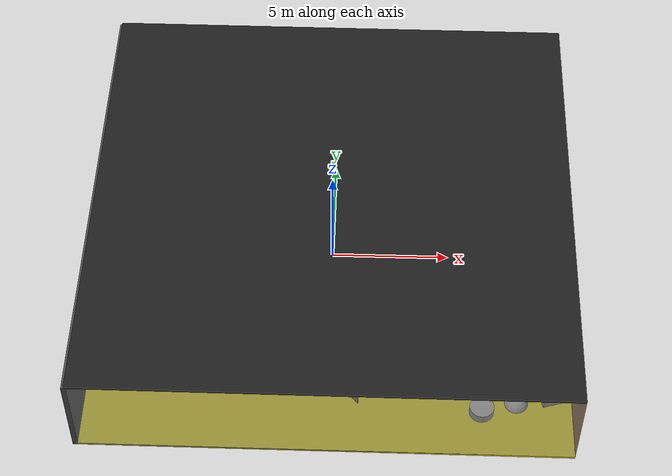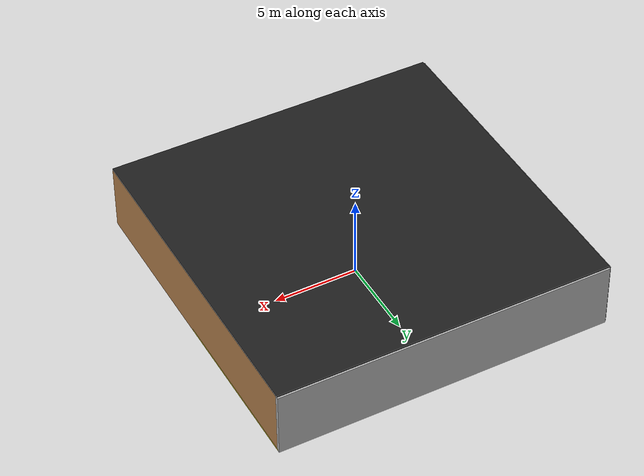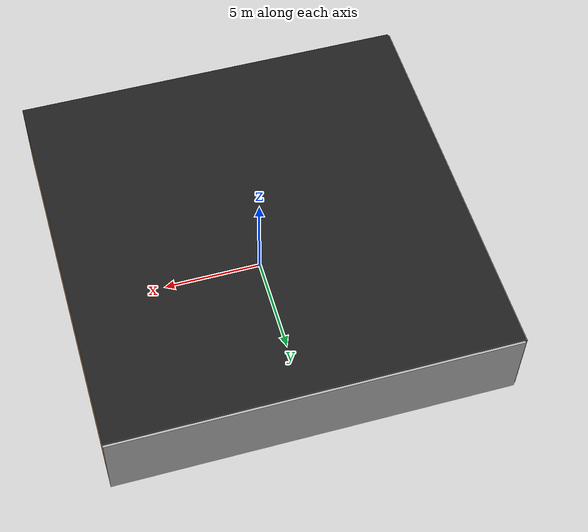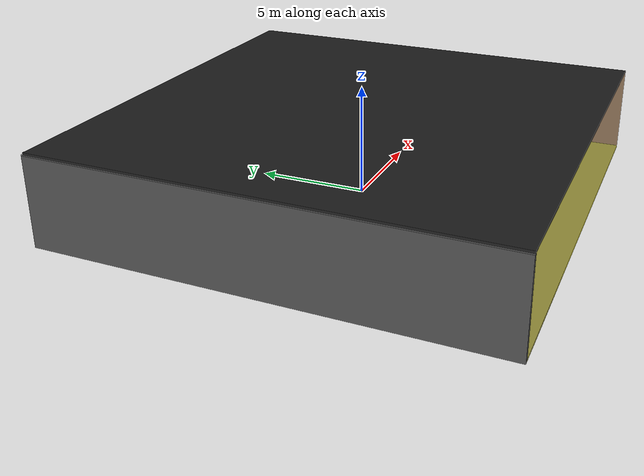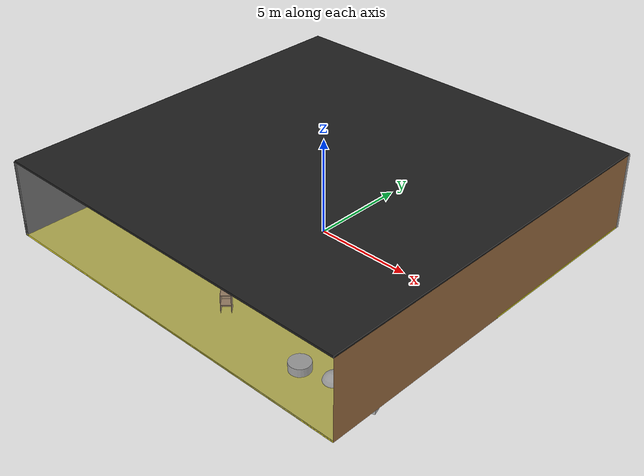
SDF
<sdf version="1.4">
 <world name="default">
  <physics type="ode">
   <max_step_size>0.001</max_step_size>
   <real_time_factor>1</real_time_factor>
   <real_time_update_rate>1000</real_time_update_rate>
   <gravity>0 0 -9.8</gravity>
  </physics>
  <scene><ambient>0.4 0.4 0.4 1</ambient><background>0.7 0.7 0.7 1</background><shadows>1</shadows></scene>
  <model name="Surrounding">
   <static>1</static>
   <link name="Ceiling">
    <collision name="Ceiling_Collision"><geometry><box><size>20 20 0.1</size></box></geometry></collision>
    <visual name="Ceiling_Visual">
     <geometry><box><size>20 20 0.1</size></box></geometry>
     <material>
      <script><uri>file://media/materials/scripts/gazebo.material</uri><name>Gazebo/Black</name></script>
     </material>
    </visual>
    <pose>0 0 4.05 0 0 0</pose>
   </link>
   <link name="Wall_South">
    <collision name="Wall_South_Collision">
     <geometry><box><size>20 0 4</size></box></geometry>
     <pose>0 0 2 0 -0 0</pose>
    </collision>
    <visual name="Wall_South_Visual">
     <pose>0 0 2 0 -0 0</pose>
     <geometry><box><size>20 0 4</size></box></geometry>
     <material>
      <script><uri>file://media/materials/scripts/gazebo.material</uri><name>Gazebo/GreyTransparent</name></script>
     </material>
    </visual>
    <velocity_decay><linear>0</linear><angular>0</angular></velocity_decay>
    <pose>0 -10 0 0 -0 0</pose>
   </link>
   <link name="Wall_East">
    <collision name="Wall_21_Collision">
     <geometry><box><size>20 0 4</size></box></geometry>
     <pose>0 0 2 0 -0 0</pose>
    </collision>
    <visual name="Wall_21_Visual">
     <pose>0 0 2 0 -0 0</pose>
     <geometry><box><size>20 0 4</size></box></geometry>
     <material>
      <script><uri>file://media/materials/scripts/gazebo.material</uri><name>Gazebo/WoodPallet</name></script>
     </material>
    </visual>
    <velocity_decay><linear>0</linear><angular>0</angular></velocity_decay>
    <pose>10 0 0 0 -0 1.5708</pose>
   </link>
   <link name="Wall_North">
    <collision name="Wall_22_Collision">
     <geometry><box><size>20 0.2 4</size></box></geometry>
     <pose>0 0 2 0 -0 0</pose>
    </collision>
    <visual name="Wall_22_Visual">
     <pose>0 0 2 0 -0 0</pose>
     <geometry><box><size>20 0.2 4</size></box></geometry>
     <material>
      <script><uri>file://media/materials/scripts/gazebo.material</uri><name>Gazebo/Pioneer2Body</name></script>
     </material>
    </visual>
    <velocity_decay><linear>0</linear><angular>0</angular></velocity_decay>
    <pose>0 10 0 0 -0 0</pose>
   </link>
   <link name="Wall_West">
    <collision name="Wall_23_Collision">
     <geometry><box><size>20 0.2 4</size></box></geometry>
     <pose>0 0 2 0 -0 0</pose>
    </collision>
    <visual name="Wall_23_Visual">
     <pose>0 0 2 0 -0 0</pose>
     <geometry><box><size>20 0.2 4</size></box></geometry>
     <material>
      <script><uri>file://media/materials/scripts/gazebo.material</uri><name>Gazebo/Road</name></script>
     </material>
    </visual>
    <velocity_decay><linear>0</linear><angular>0</angular></velocity_decay>
    <pose>-10 0 0 0 0 -1.5708</pose>
   </link>
   <link name="Ground_link">
    <collision name="collision">
     <pose>0 0 .05 0 -0 0</pose>
     <geometry><box><size>20 20 0.1</size></box></geometry>
    </collision>
    <visual name="visual">
     <pose>0 0 .05 0 -0 0</pose>
     <geometry><box><size>20 20 0.1</size></box></geometry>
     <material>
      <script><uri>file://media/materials/scripts/gazebo.material</uri><name>Gazebo/YellowGlow</name></script>
     </material>
    </visual>
   </link>
   <static>1</static>
  </model>
  <spherical_coordinates>
   <surface_model>EARTH_WGS84</surface_model>
   <latitude_deg>0</latitude_deg>
   <longitude_deg>0</longitude_deg>
   <elevation>0</elevation>
   <heading_deg>0</heading_deg>
  </spherical_coordinates>
  <light name="lightball_0" type="diffuse">
   <diffuse>0.8 0.8 0.8 1</diffuse>
   <specular>0.2 0.2 0.2 1</specular>
   <attenuation>
    <range>100</range>
    <constant>0.7</constant>
    <linear>0.01</linear>
    <quadratic>0.001</quadratic>
   </attenuation>
   <direction>-0.5 0.1 -0.9</direction>
   <pose>6.13173337723 5.97000826999 0.751445818662 0 0 0</pose>
  </light>
  <light name="lightball_1" type="diffuse">
   <diffuse>0.8 0.8 0.8 1</diffuse>
   <specular>0.2 0.2 0.2 1</specular>
   <attenuation>
    <range>100</range>
    <constant>0.7</constant>
    <linear>0.01</linear>
    <quadratic>0.001</quadratic>
   </attenuation>
   <direction>-0.5 0.1 -0.9</direction>
   <pose>3.0374007321 -2.81225207593 3.5853978411 0 0 0</pose>
  </light>
  <light name="lightball_2" type="diffuse">
   <diffuse>0.8 0.8 0.8 1</diffuse>
   <specular>0.2 0.2 0.2 1</specular>
   <attenuation>
    <range>100</range>
    <constant>0.7</constant>
    <linear>0.01</linear>
    <quadratic>0.001</quadratic>
   </attenuation>
   <direction>-0.5 0.1 -0.9</direction>
   <pose>-3.93516303139 -6.45648261408 0.762824338633 0 0 0</pose>
  </light>
  <light name="lightball_3" type="diffuse">
   <diffuse>0.8 0.8 0.8 1</diffuse>
   <specular>0.2 0.2 0.2 1</specular>
   <attenuation>
    <range>100</range>
    <constant>0.7</constant>
    <linear>0.01</linear>
    <quadratic>0.001</quadratic>
   </attenuation>
   <direction>-0.5 0.1 -0.9</direction>
   <pose>-2.47071479852 -1.63195955633 1.12557566247 0 0 0</pose>
  </light>
  <light name="lightball_4" type="diffuse">
   <diffuse>0.8 0.8 0.8 1</diffuse>
   <specular>0.2 0.2 0.2 1</specular>
   <attenuation>
    <range>100</range>
    <constant>0.7</constant>
    <linear>0.01</linear>
    <quadratic>0.001</quadratic>
   </attenuation>
   <direction>-0.5 0.1 -0.9</direction>
   <pose>-1.14334491536 -2.47345393525 1.8271640996 0 0 0</pose>
  </light>
  <include>
   <uri>model://construction_cone</uri>
   <pose>-8.24269323945 1.61735999885 0 0 0 1.36269616637</pose>
  </include>
  <include>
   <uri>model://robocup_3Dsim_goal</uri>
   <pose>-1.55597337896 0.793139978012 0 0 0 0.150237210868</pose>
  </include>
  <include><uri>model://cabinet</uri><pose>1.3071556363 -7.41387316836 0 0 0 2.30264602491</pose></include>
  <include>
   <uri>model://textured_shapes</uri>
   <pose>7.73458656292 -7.53753684023 0 0 0 1.88199230588</pose>
  </include>
  <include><uri>model://cabinet</uri><pose>7.92726855536 -4.83394998743 0 0 0 2.58834743326</pose></include>
  <include>
   <uri>model://construction_cone</uri>
   <pose>7.04358480909 -1.90737334701 0 0 0 1.60175726504</pose>
  </include>
  <include>
   <uri>model://textured_shapes</uri>
   <pose>7.11166613395 0.922164159809 0 0 0 0.0667926927638</pose>
  </include>
 </world>
</sdf>

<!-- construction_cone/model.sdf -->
<sdf version="1.5">
  <model name="Construction Cone">
    <link name="link">
      <collision name="collision">
        <geometry>
          <mesh>
            <scale>10 10 10</scale>
            <uri>file://isr-testbed/construction_cone/meshes/construction_cone.dae</uri>
          </mesh>
        </geometry>
      </collision>
      <visual name="visual">
        <geometry>
          <mesh>
            <scale>10 10 10</scale>
            <uri>file://isr-testbed/construction_cone/meshes/construction_cone.dae</uri>
          </mesh>
        </geometry>
      </visual>
    </link>
  </model>
</sdf>

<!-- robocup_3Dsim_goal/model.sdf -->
<sdf version="1.5">
  <model name="robocup_3d_goal">
    <static>true</static>
    <link name="left_post">
      <pose>0 1.05 0.45 0 0 0</pose>
      <collision name="collision">
        <geometry>
          <cylinder>
            <radius>0.05</radius>
            <length>0.9</length>
          </cylinder>
        </geometry>
      </collision>
      <visual name="visual">
        <geometry>
          <cylinder>
            <radius>0.05</radius>
            <length>0.9</length>
          </cylinder>
        </geometry>
        <material>
          <script>
            <uri>file://media/materials/scripts/gazebo.material</uri>
            <name>Gazebo/ZincYellow</name>
          </script>
        </material>
      </visual>
    </link>
    <link name="left_support_horiz_lower">
      <pose>0.30 1.05 0.01 0 0 0</pose>
      <collision name="collision">
        <geometry>
          <box>
            <size>0.50 0.02 0.02</size>
          </box>
        </geometry>
      </collision>
      <visual name="visual">
        <geometry>
          <box>
            <size>0.50 0.02 0.02</size>
          </box>
        </geometry>
        <material>
          <script>
            <uri>file://media/materials/scripts/gazebo.material</uri>
            <name>Gazebo/White</name>
          </script>
        </material>
      </visual>
    </link>
    <link name="left_support_horiz_upper">
      <pose>0.30 1.05 0.79 0 0 0</pose>
      <collision name="collision">
        <geometry>
          <box>
            <size>0.50 0.02 0.02</size>
          </box>
        </geometry>
      </collision>
      <visual name="visual">
        <geometry>
          <box>
            <size>0.50 0.02 0.02</size>
          </box>
        </geometry>
        <material>
          <script>
            <uri>file://media/materials/scripts/gazebo.material</uri>
            <name>Gazebo/White</name>
          </script>
        </material>
      </visual>
    </link>
    <link name="left_support_vertical">
      <pose>0.56 1.05 0.4 0 1.5708 0</pose>
      <collision name="collision">
        <geometry>
          <box>
            <size>0.80 0.02 0.02</size>
          </box>
        </geometry>
      </collision>
      <visual name="visual">
        <geometry>
          <box>
            <size>0.80 0.02 0.02</size>
          </box>
        </geometry>
        <material>
          <script>
            <uri>file://media/materials/scripts/gazebo.material</uri>
            <name>Gazebo/White</name>
          </script>
        </material>
      </visual>
    </link>
    <link name="right_support_horiz_lower">
      <pose>0.30 -1.05 0.01 0 0 0</pose>
      <collision name="collision">
        <geometry>
          <box>
            <size>0.50 0.02 0.02</size>
          </box>
        </geometry>
      </collision>
      <visual name="visual">
        <geometry>
          <box>
            <size>0.50 0.02 0.02</size>
          </box>
        </geometry>
        <material>
          <script>
            <uri>file://media/materials/scripts/gazebo.material</uri>
            <name>Gazebo/White</name>
          </script>
        </material>
      </visual>
    </link>
    <link name="right_support_horiz_upper">
      <pose>0.30 -1.05 0.79 0 0 0</pose>
      <collision name="collision">
        <geometry>
          <box>
            <size>0.50 0.02 0.02</size>
          </box>
        </geometry>
      </collision>
      <visual name="visual">
        <geometry>
          <box>
            <size>0.50 0.02 0.02</size>
          </box>
        </geometry>
        <material>
          <script>
            <uri>file://media/materials/scripts/gazebo.material</uri>
            <name>Gazebo/White</name>
          </script>
        </material>
      </visual>
    </link>
    <link name="right_support_vertical">
      <pose>0.56 -1.05 0.4 0 1.5708 0</pose>
      <collision name="collision">
        <geometry>
          <box>
            <size>0.80 0.02 0.02</size>
          </box>
        </geometry>
      </collision>
      <visual name="visual">
        <geometry>
          <box>
            <size>0.80 0.02 0.02</size>
          </box>
        </geometry>
        <material>
          <script>
            <uri>file://media/materials/scripts/gazebo.material</uri>
            <name>Gazebo/White</name>
          </script>
        </material>
      </visual>
    </link>
    <link name="center_support_horiz_lower">
      <pose>0.56 0 0.01 0 1.5708 0</pose>
      <collision name="collision">
        <geometry>
          <box>
            <size>0.02 2.08 0.02</size>
          </box>
        </geometry>
      </collision>
      <visual name="visual">
        <geometry>
          <box>
            <size>0.02 2.08 0.02</size>
          </box>
        </geometry>
        <material>
          <script>
            <uri>file://media/materials/scripts/gazebo.material</uri>
            <name>Gazebo/White</name>
          </script>
        </material>
      </visual>
    </link>
    <link name="center_support_horiz_upper">
      <pose>0.56 0 0.79 0 1.5708 0</pose>
      <collision name="collision">
        <geometry>
          <box>
            <size>0.02 2.08 0.02</size>
          </box>
        </geometry>
      </collision>
      <visual name="visual">
        <geometry>
          <box>
            <size>0.02 2.08 0.02</size>
          </box>
        </geometry>
        <material>
          <script>
            <uri>file://media/materials/scripts/gazebo.material</uri>
            <name>Gazebo/White</name>
          </script>
        </material>
      </visual>
    </link>
    <link name="right_post">
      <pose>0 -1.05 0.45 0 0 0</pose>
      <collision name="collision">
        <geometry>
          <cylinder>
            <radius>0.05</radius>
            <length>0.9</length>
          </cylinder>
        </geometry>
      </collision>
      <visual name="visual">
        <geometry>
          <cylinder>
            <radius>0.05</radius>
            <length>0.9</length>
          </cylinder>
        </geometry>
        <material>
          <script>
            <uri>file://media/materials/scripts/gazebo.material</uri>
            <name>Gazebo/ZincYellow</name>
          </script>
        </material>
      </visual>
    </link>
    <link name="crossbar">
      <pose>0 0 0.85 1.57 1.57 0</pose>
      <collision name="collision">
        <geometry>
          <cylinder>
            <radius>0.05</radius>
            <length>2.0</length>
          </cylinder>
        </geometry>
      </collision>
      <visual name="visual">
        <geometry>
          <cylinder>
            <radius>0.05</radius>
            <length>2.0</length>
          </cylinder>
        </geometry>
        <material>
          <script>
            <uri>file://media/materials/scripts/gazebo.material</uri>
            <name>Gazebo/ZincYellow</name>
          </script>
        </material>
      </visual>
    </link>
    <link name="center_net">
      <pose>0.56 0 0.40 0 0 0</pose>
      <collision name="collision">
        <geometry>
          <box>
            <size>0.01 2.1 0.80</size>
          </box>
        </geometry>
      </collision>
      <visual name="visual">
        <geometry>
          <box>
            <size>0.01 2.1 0.80</size>
          </box>
        </geometry>
        <material>
          <script>
            <uri>model://../model_source/models/robocup09_spl_field/materials/scripts/</uri>
            <uri>model://../model_source/models/robocup09_spl_field/materials/textures/</uri>
            <name>RoboCup/Net</name>
          </script>
        </material>
      </visual>
    </link>
    <link name="left_net">
      <pose>0.30 1.05 0.40 0 0 0</pose>
      <collision name="collision">
        <geometry>
          <box>
            <size>0.50 0.01 0.76</size>
          </box>
        </geometry>
      </collision>
      <visual name="visual">
        <geometry>
          <box>
            <size>0.50 0.01 0.76</size>
          </box>
        </geometry>
        <material>
          <script>
            <uri>model://../model_source/models/robocup09_spl_field/materials/scripts/</uri>
            <uri>model://../model_source/models/robocup09_spl_field/materials/textures/</uri>
            <name>RoboCup/Net</name>
          </script>
        </material>
      </visual>
    </link>
    <link name="right_net">
      <pose>0.30 -1.05 0.40 0 0 0</pose>
      <collision name="collision">
        <geometry>
          <box>
            <size>0.50 0.01 0.76</size>
          </box>
        </geometry>
      </collision>
      <visual name="visual">
        <geometry>
          <box>
            <size>0.50 0.01 0.76</size>
          </box>
        </geometry>
        <material>
          <script>
            <uri>model://../model_source/models/robocup09_spl_field/materials/scripts/</uri>
            <uri>model://../model_source/models/robocup09_spl_field/materials/textures/</uri>
            <name>RoboCup/Net</name>
          </script>
        </material>
      </visual>
    </link>
  </model>
</sdf>

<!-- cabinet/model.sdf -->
<sdf version="1.5">
  <model name="cabinet">
    <static>true</static>
    <link name="cabinet_bottom_plate">
      <inertial>
        <pose>0 0 -1 0 0 0</pose>
        <inertia>
          <ixx>2.050000</ixx>
          <ixy>0</ixy>
          <ixz>0</ixz>
          <iyy>2.050000</iyy>
          <iyz>0</iyz>
          <izz>2.050000</izz>
        </inertia>
        <mass>25.000000</mass>
      </inertial>
      <collision name="cabinet_bottom_plate_geom">
        <pose>0 0 0.010000 0 0 0</pose>
        <geometry>
          <box>
            <size>0.450000 0.450000 0.020000</size>
          </box>
        </geometry>
      </collision>
      <visual name="cabinet_bottom_plate_geom_visual">
        <pose>0 0 0.010000 0 0 0</pose>
        <geometry>
          <box>
            <size>0.450000 0.450000 0.020000</size>
          </box>
        </geometry>
        <material>
          <script>
            <uri>model://media/materials/scripts/gazebo.material</uri>
            <name>Gazebo/Wood</name>
          </script>
        </material>
      </visual>
      <collision name="cabinet_bottom_plate_geom_cabinet_back_plate">
        <pose>0.235000 0 0.510000 0 0 0</pose>
        <geometry>
          <box>
            <size>0.020000 0.450000 1.020000</size>
          </box>
        </geometry>
      </collision>
      <visual name="cabinet_bottom_plate_geom_cabinet_back_plate_visual">
        <pose>0.235000 0 0.510000 0 0 0</pose>
        <geometry>
          <box>
            <size>0.020000 0.450000 1.020000</size>
          </box>
        </geometry>
        <material>
          <script>
            <uri>model://media/materials/scripts/gazebo.material</uri>
            <name>Gazebo/Wood</name>
          </script>
        </material>
      </visual>
      <collision name="cabinet_bottom_plate_geom_cabinet_left_plate">
        <pose>0 0.235000 0.510000 0 0 0</pose>
        <geometry>
          <box>
            <size>0.450000 0.020000 1.020000</size>
          </box>
        </geometry>
      </collision>
      <visual name="cabinet_bottom_plate_geom_cabinet_left_plate_visual">
        <pose>0 0.235000 0.510000 0 0 0</pose>
        <geometry>
          <box>
            <size>0.450000 0.020000 1.020000</size>
          </box>
        </geometry>
        <material>
          <script>
            <uri>model://media/materials/scripts/gazebo.material</uri>
            <name>Gazebo/Wood</name>
          </script>
        </material>
      </visual>
      <collision name="cabinet_bottom_plate_geom_cabinet_middle_plate">
        <pose>0 0 0.510000 0 0 0</pose>
        <geometry>
          <box>
            <size>0.450000 0.450000 0.020000</size>
          </box>
        </geometry>
      </collision>
      <visual name="cabinet_bottom_plate_geom_cabinet_middle_plate_visual">
        <pose>0 0 0.510000 0 0 0</pose>
        <geometry>
          <box>
            <size>0.450000 0.450000 0.020000</size>
          </box>
        </geometry>
        <material>
          <script>
            <uri>model://media/materials/scripts/gazebo.material</uri>
            <name>Gazebo/Wood</name>
          </script>
        </material>
      </visual>
      <collision name="cabinet_bottom_plate_geom_cabinet_right_plate">
        <pose>0 -0.235000 0.510000 0 0 0</pose>
        <geometry>
          <box>
            <size>0.450000 0.020000 1.020000</size>
          </box>
        </geometry>
      </collision>
      <visual name="cabinet_bottom_plate_geom_cabinet_right_plate_visual">
        <pose>0 -0.235000 0.510000 0 0 0</pose>
        <geometry>
          <box>
            <size>0.450000 0.020000 1.020000</size>
          </box>
        </geometry>
        <material>
          <script>
            <uri>model://media/materials/scripts/gazebo.material</uri>
            <name>Gazebo/Wood</name>
          </script>
        </material>
      </visual>
      <collision name="cabinet_bottom_plate_geom_cabinet_top_plate">
        <pose>0 0 1.010000 0 0 0</pose>
        <geometry>
          <box>
            <size>0.450000 0.450000 0.020000</size>
          </box>
        </geometry>
      </collision>
      <visual name="cabinet_bottom_plate_geom_cabinet_top_plate_visual">
        <pose>0 0 1.010000 0 0 0</pose>
        <geometry>
          <box>
            <size>0.450000 0.450000 0.020000</size>
          </box>
        </geometry>
        <material>
          <script>
            <uri>model://media/materials/scripts/gazebo.material</uri>
            <name>Gazebo/Wood</name>
          </script>
        </material>
      </visual>
    </link>
  </model>
</sdf>

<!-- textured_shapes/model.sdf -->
<sdf version="1.6">
  <model name="textured_shapes">
    <pose>0 0 0.5 0 0 0</pose>
    <link name="box">
      <pose>0 -1.5 0 0 0 0</pose>
      <collision name="collision">
        <geometry>
          <box>
            <size>1 1 1</size>
          </box>
        </geometry>
      </collision>
      <visual name="visual">
        <geometry>
          <box>
            <size>1 1 1</size>
          </box>
        </geometry>
        <material>
          <script>
            <uri>model://../model_source/models/textured_shapes/materials/scripts</uri>
            <uri>model://../model_source/models/textured_shapes/materials/textures</uri>
            <name>TexturedShape/Squares</name>
          </script>
        </material>
      </visual>
    </link>
    <link name="sphere">
      <collision name="collision">
        <geometry>
          <sphere>
            <radius>0.5</radius>
          </sphere>
        </geometry>
      </collision>
      <visual name="visual">
        <geometry>
          <sphere>
            <radius>0.5</radius>
          </sphere>
        </geometry>
        <material>
          <script>
            <uri>model://../model_source/models/textured_shapes/materials/scripts</uri>
            <uri>model://../model_source/models/textured_shapes/materials/textures</uri>
            <name>TexturedShape/Squares</name>
          </script>
        </material>
      </visual>
    </link>
    <link name="cylinder">
      <pose>0 1.5 0 0 0 0</pose>
      <collision name="collision">
        <geometry>
          <cylinder>
            <radius>0.5</radius>
            <length>1</length>
          </cylinder>
        </geometry>
      </collision>
      <visual name="visual">
        <geometry>
          <cylinder>
            <radius>0.5</radius>
            <length>1</length>
          </cylinder>
        </geometry>
        <material>
          <script>
            <uri>model://../model_source/models/textured_shapes/materials/scripts</uri>
            <uri>model://../model_source/models/textured_shapes/materials/textures</uri>
            <name>TexturedShape/Squares</name>
          </script>
        </material>
      </visual>
    </link>
  </model>
</sdf>
